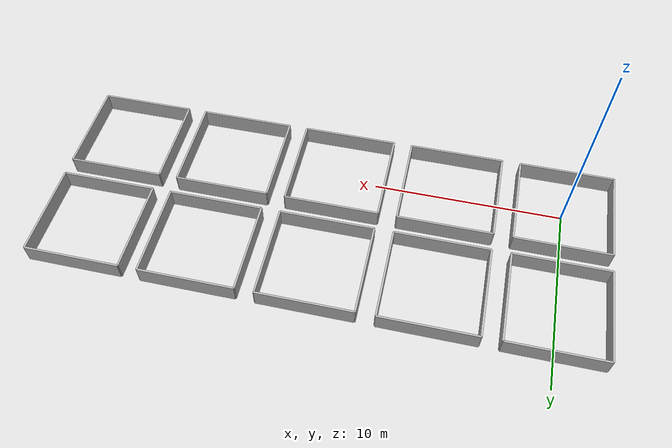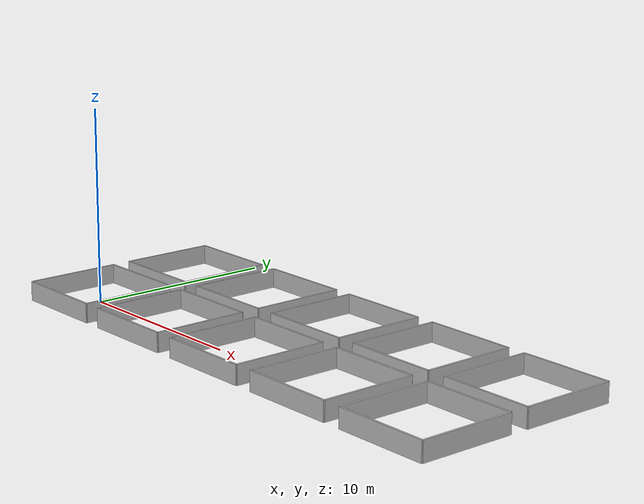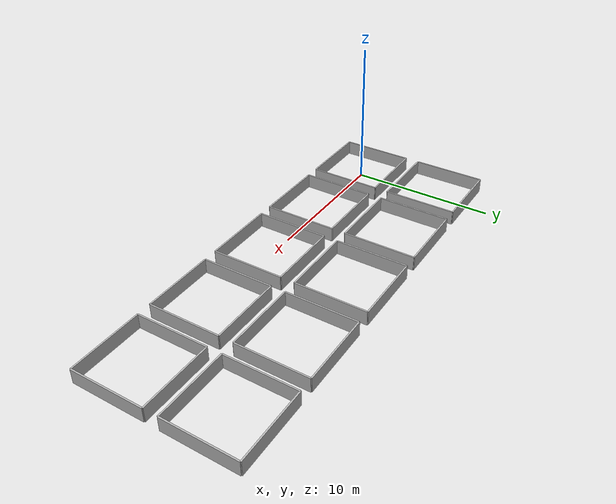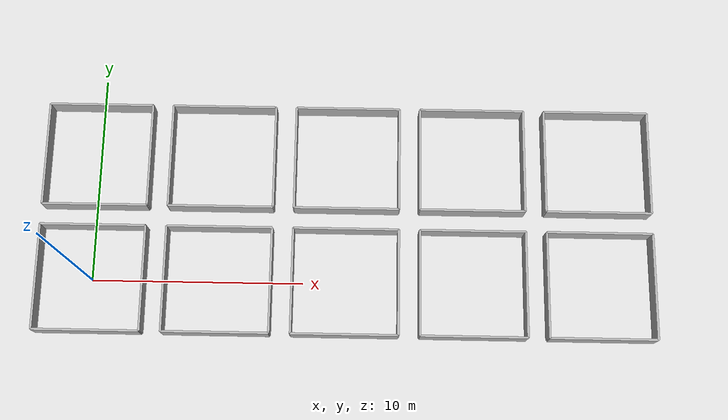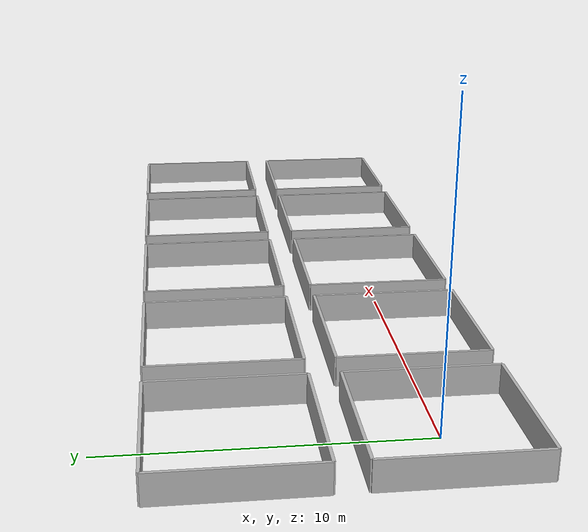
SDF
<?xml version='1.0'?>
    <sdf version='1.6'>
        <world name='default'>

    <model name='wall'>
        <static>true</static>
        <pose>0 2.5 0.5 0 0 0</pose>
        <link name='link'>
            <collision name='collision'>
                <geometry>
                    <box><size>5 0.1 1</size></box>
                </geometry>
            </collision>
            <visual name='visual'>
                <geometry>
                    <box><size>5 0.1 1</size></box>
                </geometry>
            </visual>
        </link>
    </model>

    <model name='wall'>
        <static>true</static>
        <pose>0 -2.5 0.5 0 0 0</pose>
        <link name='link'>
            <collision name='collision'>
                <geometry>
                    <box><size>5 0.1 1</size></box>
                </geometry>
            </collision>
            <visual name='visual'>
                <geometry>
                    <box><size>5 0.1 1</size></box>
                </geometry>
            </visual>
        </link>
    </model>

    <model name='wall'>
        <static>true</static>
        <pose>2.5 0 0.5 0 0 0</pose>
        <link name='link'>
            <collision name='collision'>
                <geometry>
                    <box><size>0.1 5 1</size></box>
                </geometry>
            </collision>
            <visual name='visual'>
                <geometry>
                    <box><size>0.1 5 1</size></box>
                </geometry>
            </visual>
        </link>
    </model>

    <model name='wall'>
        <static>true</static>
        <pose>-2.5 0 0.5 0 0 0</pose>
        <link name='link'>
            <collision name='collision'>
                <geometry>
                    <box><size>0.1 5 1</size></box>
                </geometry>
            </collision>
            <visual name='visual'>
                <geometry>
                    <box><size>0.1 5 1</size></box>
                </geometry>
            </visual>
        </link>
    </model>

    <model name='wall'>
        <static>true</static>
        <pose>6 2.5 0.5 0 0 0</pose>
        <link name='link'>
            <collision name='collision'>
                <geometry>
                    <box><size>5 0.1 1</size></box>
                </geometry>
            </collision>
            <visual name='visual'>
                <geometry>
                    <box><size>5 0.1 1</size></box>
                </geometry>
            </visual>
        </link>
    </model>

    <model name='wall'>
        <static>true</static>
        <pose>6 -2.5 0.5 0 0 0</pose>
        <link name='link'>
            <collision name='collision'>
                <geometry>
                    <box><size>5 0.1 1</size></box>
                </geometry>
            </collision>
            <visual name='visual'>
                <geometry>
                    <box><size>5 0.1 1</size></box>
                </geometry>
            </visual>
        </link>
    </model>

    <model name='wall'>
        <static>true</static>
        <pose>8.5 0 0.5 0 0 0</pose>
        <link name='link'>
            <collision name='collision'>
                <geometry>
                    <box><size>0.1 5 1</size></box>
                </geometry>
            </collision>
            <visual name='visual'>
                <geometry>
                    <box><size>0.1 5 1</size></box>
                </geometry>
            </visual>
        </link>
    </model>

    <model name='wall'>
        <static>true</static>
        <pose>3.5 0 0.5 0 0 0</pose>
        <link name='link'>
            <collision name='collision'>
                <geometry>
                    <box><size>0.1 5 1</size></box>
                </geometry>
            </collision>
            <visual name='visual'>
                <geometry>
                    <box><size>0.1 5 1</size></box>
                </geometry>
            </visual>
        </link>
    </model>

    <model name='wall'>
        <static>true</static>
        <pose>12 2.5 0.5 0 0 0</pose>
        <link name='link'>
            <collision name='collision'>
                <geometry>
                    <box><size>5 0.1 1</size></box>
                </geometry>
            </collision>
            <visual name='visual'>
                <geometry>
                    <box><size>5 0.1 1</size></box>
                </geometry>
            </visual>
        </link>
    </model>

    <model name='wall'>
        <static>true</static>
        <pose>12 -2.5 0.5 0 0 0</pose>
        <link name='link'>
            <collision name='collision'>
                <geometry>
                    <box><size>5 0.1 1</size></box>
                </geometry>
            </collision>
            <visual name='visual'>
                <geometry>
                    <box><size>5 0.1 1</size></box>
                </geometry>
            </visual>
        </link>
    </model>

    <model name='wall'>
        <static>true</static>
        <pose>14.5 0 0.5 0 0 0</pose>
        <link name='link'>
            <collision name='collision'>
                <geometry>
                    <box><size>0.1 5 1</size></box>
                </geometry>
            </collision>
            <visual name='visual'>
                <geometry>
                    <box><size>0.1 5 1</size></box>
                </geometry>
            </visual>
        </link>
    </model>

    <model name='wall'>
        <static>true</static>
        <pose>9.5 0 0.5 0 0 0</pose>
        <link name='link'>
            <collision name='collision'>
                <geometry>
                    <box><size>0.1 5 1</size></box>
                </geometry>
            </collision>
            <visual name='visual'>
                <geometry>
                    <box><size>0.1 5 1</size></box>
                </geometry>
            </visual>
        </link>
    </model>

    <model name='wall'>
        <static>true</static>
        <pose>18 2.5 0.5 0 0 0</pose>
        <link name='link'>
            <collision name='collision'>
                <geometry>
                    <box><size>5 0.1 1</size></box>
                </geometry>
            </collision>
            <visual name='visual'>
                <geometry>
                    <box><size>5 0.1 1</size></box>
                </geometry>
            </visual>
        </link>
    </model>

    <model name='wall'>
        <static>true</static>
        <pose>18 -2.5 0.5 0 0 0</pose>
        <link name='link'>
            <collision name='collision'>
                <geometry>
                    <box><size>5 0.1 1</size></box>
                </geometry>
            </collision>
            <visual name='visual'>
                <geometry>
                    <box><size>5 0.1 1</size></box>
                </geometry>
            </visual>
        </link>
    </model>

    <model name='wall'>
        <static>true</static>
        <pose>20.5 0 0.5 0 0 0</pose>
        <link name='link'>
            <collision name='collision'>
                <geometry>
                    <box><size>0.1 5 1</size></box>
                </geometry>
            </collision>
            <visual name='visual'>
                <geometry>
                    <box><size>0.1 5 1</size></box>
                </geometry>
            </visual>
        </link>
    </model>

    <model name='wall'>
        <static>true</static>
        <pose>15.5 0 0.5 0 0 0</pose>
        <link name='link'>
            <collision name='collision'>
                <geometry>
                    <box><size>0.1 5 1</size></box>
                </geometry>
            </collision>
            <visual name='visual'>
                <geometry>
                    <box><size>0.1 5 1</size></box>
                </geometry>
            </visual>
        </link>
    </model>

    <model name='wall'>
        <static>true</static>
        <pose>24 2.5 0.5 0 0 0</pose>
        <link name='link'>
            <collision name='collision'>
                <geometry>
                    <box><size>5 0.1 1</size></box>
                </geometry>
            </collision>
            <visual name='visual'>
                <geometry>
                    <box><size>5 0.1 1</size></box>
                </geometry>
            </visual>
        </link>
    </model>

    <model name='wall'>
        <static>true</static>
        <pose>24 -2.5 0.5 0 0 0</pose>
        <link name='link'>
            <collision name='collision'>
                <geometry>
                    <box><size>5 0.1 1</size></box>
                </geometry>
            </collision>
            <visual name='visual'>
                <geometry>
                    <box><size>5 0.1 1</size></box>
                </geometry>
            </visual>
        </link>
    </model>

    <model name='wall'>
        <static>true</static>
        <pose>26.5 0 0.5 0 0 0</pose>
        <link name='link'>
            <collision name='collision'>
                <geometry>
                    <box><size>0.1 5 1</size></box>
                </geometry>
            </collision>
            <visual name='visual'>
                <geometry>
                    <box><size>0.1 5 1</size></box>
                </geometry>
            </visual>
        </link>
    </model>

    <model name='wall'>
        <static>true</static>
        <pose>21.5 0 0.5 0 0 0</pose>
        <link name='link'>
            <collision name='collision'>
                <geometry>
                    <box><size>0.1 5 1</size></box>
                </geometry>
            </collision>
            <visual name='visual'>
                <geometry>
                    <box><size>0.1 5 1</size></box>
                </geometry>
            </visual>
        </link>
    </model>

    <model name='wall'>
        <static>true</static>
        <pose>0 8.5 0.5 0 0 0</pose>
        <link name='link'>
            <collision name='collision'>
                <geometry>
                    <box><size>5 0.1 1</size></box>
                </geometry>
            </collision>
            <visual name='visual'>
                <geometry>
                    <box><size>5 0.1 1</size></box>
                </geometry>
            </visual>
        </link>
    </model>

    <model name='wall'>
        <static>true</static>
        <pose>0 3.5 0.5 0 0 0</pose>
        <link name='link'>
            <collision name='collision'>
                <geometry>
                    <box><size>5 0.1 1</size></box>
                </geometry>
            </collision>
            <visual name='visual'>
                <geometry>
                    <box><size>5 0.1 1</size></box>
                </geometry>
            </visual>
        </link>
    </model>

    <model name='wall'>
        <static>true</static>
        <pose>2.5 6 0.5 0 0 0</pose>
        <link name='link'>
            <collision name='collision'>
                <geometry>
                    <box><size>0.1 5 1</size></box>
                </geometry>
            </collision>
            <visual name='visual'>
                <geometry>
                    <box><size>0.1 5 1</size></box>
                </geometry>
            </visual>
        </link>
    </model>

    <model name='wall'>
        <static>true</static>
        <pose>-2.5 6 0.5 0 0 0</pose>
        <link name='link'>
            <collision name='collision'>
                <geometry>
                    <box><size>0.1 5 1</size></box>
                </geometry>
            </collision>
            <visual name='visual'>
                <geometry>
                    <box><size>0.1 5 1</size></box>
                </geometry>
            </visual>
        </link>
    </model>

    <model name='wall'>
        <static>true</static>
        <pose>6 8.5 0.5 0 0 0</pose>
        <link name='link'>
            <collision name='collision'>
                <geometry>
                    <box><size>5 0.1 1</size></box>
                </geometry>
            </collision>
            <visual name='visual'>
                <geometry>
                    <box><size>5 0.1 1</size></box>
                </geometry>
            </visual>
        </link>
    </model>

    <model name='wall'>
        <static>true</static>
        <pose>6 3.5 0.5 0 0 0</pose>
        <link name='link'>
            <collision name='collision'>
                <geometry>
                    <box><size>5 0.1 1</size></box>
                </geometry>
            </collision>
            <visual name='visual'>
                <geometry>
                    <box><size>5 0.1 1</size></box>
                </geometry>
            </visual>
        </link>
    </model>

    <model name='wall'>
        <static>true</static>
        <pose>8.5 6 0.5 0 0 0</pose>
        <link name='link'>
            <collision name='collision'>
                <geometry>
                    <box><size>0.1 5 1</size></box>
                </geometry>
            </collision>
            <visual name='visual'>
                <geometry>
                    <box><size>0.1 5 1</size></box>
                </geometry>
            </visual>
        </link>
    </model>

    <model name='wall'>
        <static>true</static>
        <pose>3.5 6 0.5 0 0 0</pose>
        <link name='link'>
            <collision name='collision'>
                <geometry>
                    <box><size>0.1 5 1</size></box>
                </geometry>
            </collision>
            <visual name='visual'>
                <geometry>
                    <box><size>0.1 5 1</size></box>
                </geometry>
            </visual>
        </link>
    </model>

    <model name='wall'>
        <static>true</static>
        <pose>12 8.5 0.5 0 0 0</pose>
        <link name='link'>
            <collision name='collision'>
                <geometry>
                    <box><size>5 0.1 1</size></box>
                </geometry>
            </collision>
            <visual name='visual'>
                <geometry>
                    <box><size>5 0.1 1</size></box>
                </geometry>
            </visual>
        </link>
    </model>

    <model name='wall'>
        <static>true</static>
        <pose>12 3.5 0.5 0 0 0</pose>
        <link name='link'>
            <collision name='collision'>
                <geometry>
                    <box><size>5 0.1 1</size></box>
                </geometry>
            </collision>
            <visual name='visual'>
                <geometry>
                    <box><size>5 0.1 1</size></box>
                </geometry>
            </visual>
        </link>
    </model>

    <model name='wall'>
        <static>true</static>
        <pose>14.5 6 0.5 0 0 0</pose>
        <link name='link'>
            <collision name='collision'>
                <geometry>
                    <box><size>0.1 5 1</size></box>
                </geometry>
            </collision>
            <visual name='visual'>
                <geometry>
                    <box><size>0.1 5 1</size></box>
                </geometry>
            </visual>
        </link>
    </model>

    <model name='wall'>
        <static>true</static>
        <pose>9.5 6 0.5 0 0 0</pose>
        <link name='link'>
            <collision name='collision'>
                <geometry>
                    <box><size>0.1 5 1</size></box>
                </geometry>
            </collision>
            <visual name='visual'>
                <geometry>
                    <box><size>0.1 5 1</size></box>
                </geometry>
            </visual>
        </link>
    </model>

    <model name='wall'>
        <static>true</static>
        <pose>18 8.5 0.5 0 0 0</pose>
        <link name='link'>
            <collision name='collision'>
                <geometry>
                    <box><size>5 0.1 1</size></box>
                </geometry>
            </collision>
            <visual name='visual'>
                <geometry>
                    <box><size>5 0.1 1</size></box>
                </geometry>
            </visual>
        </link>
    </model>

    <model name='wall'>
        <static>true</static>
        <pose>18 3.5 0.5 0 0 0</pose>
        <link name='link'>
            <collision name='collision'>
                <geometry>
                    <box><size>5 0.1 1</size></box>
                </geometry>
            </collision>
            <visual name='visual'>
                <geometry>
                    <box><size>5 0.1 1</size></box>
                </geometry>
            </visual>
        </link>
    </model>

    <model name='wall'>
        <static>true</static>
        <pose>20.5 6 0.5 0 0 0</pose>
        <link name='link'>
            <collision name='collision'>
                <geometry>
                    <box><size>0.1 5 1</size></box>
                </geometry>
            </collision>
            <visual name='visual'>
                <geometry>
                    <box><size>0.1 5 1</size></box>
                </geometry>
            </visual>
        </link>
    </model>

    <model name='wall'>
        <static>true</static>
        <pose>15.5 6 0.5 0 0 0</pose>
        <link name='link'>
            <collision name='collision'>
                <geometry>
                    <box><size>0.1 5 1</size></box>
                </geometry>
            </collision>
            <visual name='visual'>
                <geometry>
                    <box><size>0.1 5 1</size></box>
                </geometry>
            </visual>
        </link>
    </model>

    <model name='wall'>
        <static>true</static>
        <pose>24 8.5 0.5 0 0 0</pose>
        <link name='link'>
            <collision name='collision'>
                <geometry>
                    <box><size>5 0.1 1</size></box>
                </geometry>
            </collision>
            <visual name='visual'>
                <geometry>
                    <box><size>5 0.1 1</size></box>
                </geometry>
            </visual>
        </link>
    </model>

    <model name='wall'>
        <static>true</static>
        <pose>24 3.5 0.5 0 0 0</pose>
        <link name='link'>
            <collision name='collision'>
                <geometry>
                    <box><size>5 0.1 1</size></box>
                </geometry>
            </collision>
            <visual name='visual'>
                <geometry>
                    <box><size>5 0.1 1</size></box>
                </geometry>
            </visual>
        </link>
    </model>

    <model name='wall'>
        <static>true</static>
        <pose>26.5 6 0.5 0 0 0</pose>
        <link name='link'>
            <collision name='collision'>
                <geometry>
                    <box><size>0.1 5 1</size></box>
                </geometry>
            </collision>
            <visual name='visual'>
                <geometry>
                    <box><size>0.1 5 1</size></box>
                </geometry>
            </visual>
        </link>
    </model>

    <model name='wall'>
        <static>true</static>
        <pose>21.5 6 0.5 0 0 0</pose>
        <link name='link'>
            <collision name='collision'>
                <geometry>
                    <box><size>0.1 5 1</size></box>
                </geometry>
            </collision>
            <visual name='visual'>
                <geometry>
                    <box><size>0.1 5 1</size></box>
                </geometry>
            </visual>
        </link>
    </model>

        </world>
    </sdf>
